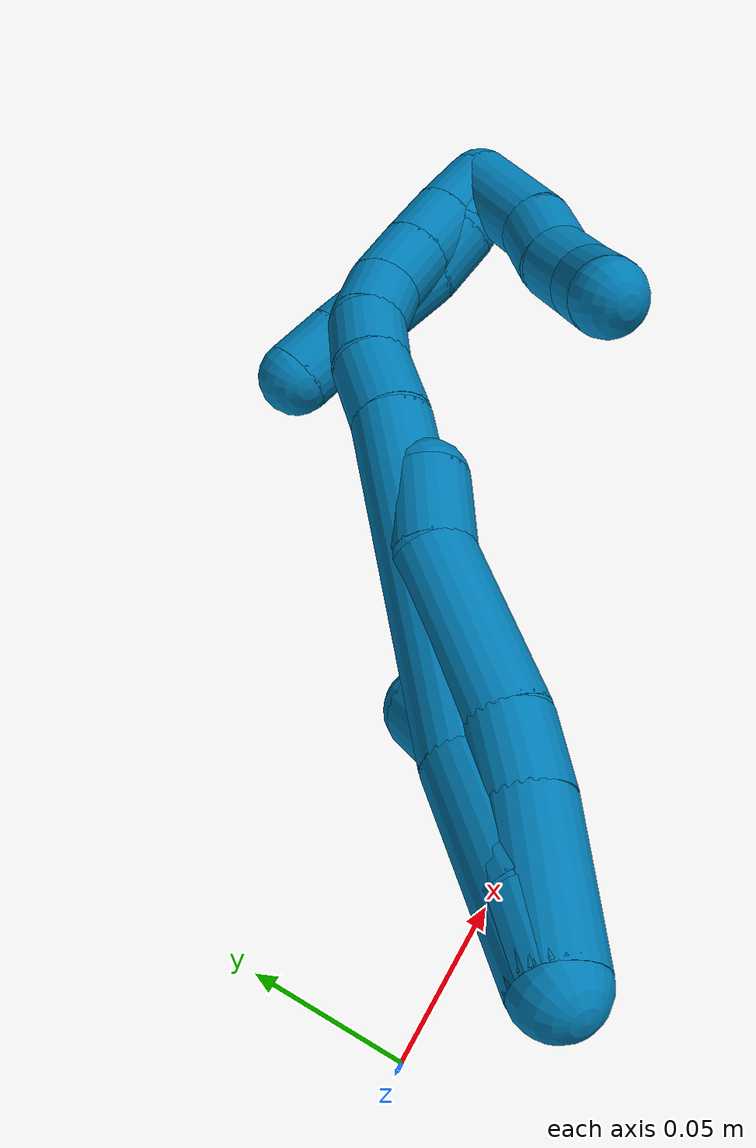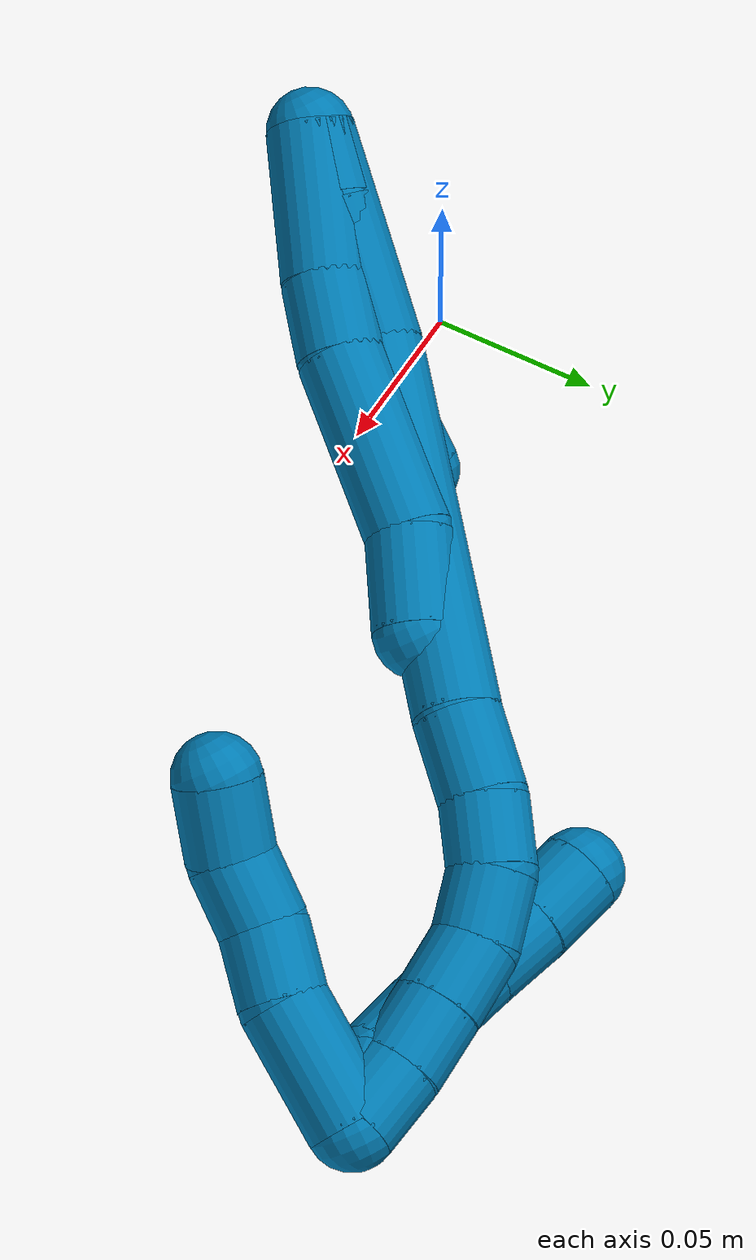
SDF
<sdf version="1.7">
 <world name="default">
  <model name="photoneo_s_sensor">
   <static>1</static>
   <pose>0 0 2 1.57079 1.57079 3.14159</pose>
   <link name="link">
    <inertial><mass>0.1</mass></inertial>
    <sensor name="sensor" type="depth">
     <update_rate>30</update_rate>
     <camera>
      <horizontal_fov>1.22</horizontal_fov>
      <image><width>1920</width><height>1200</height><format>B8G8R8</format></image>
      <clip><near>0.1</near><far>4</far></clip>
      <depth_camera><output>points</output></depth_camera>
     </camera>
     <plugin name="camera_plugin" filename="libgazebo_ros_depth_camera.so">
      <baseline>0.2</baseline>
      <alwaysOn>1</alwaysOn>
      <updateRate>0.0</updateRate>
      <cameraName>camera_ir</cameraName>
      <imageTopicName>/camera/color/image_raw</imageTopicName>
      <cameraInfoTopicName>/camera/color/camera_info</cameraInfoTopicName>
      <depthImageTopicName>/camera/depth/image_raw</depthImageTopicName>
      <depthImageCameraInfoTopicName>/camera/depth/camera_info</depthImageCameraInfoTopicName>
      <pointCloudTopicName>/camera/depth/points</pointCloudTopicName>
      <frameName>fr_optical</frameName>
      <pointCloudCutoff>0.1</pointCloudCutoff>
      <pointCloudCutoffMax>2.0</pointCloudCutoffMax>
      <distortionK1>0</distortionK1>
      <distortionK2>0</distortionK2>
      <distortionK3>0</distortionK3>
      <distortionT1>0</distortionT1>
      <distortionT2>0</distortionT2>
      <CxPrime>0</CxPrime>
      <Cx>0</Cx>
      <Cy>0</Cy>
      <focalLength>0</focalLength>
      <hackBaseline>0</hackBaseline>
     </plugin>
    </sensor>
   </link>
  </model>
  <model name="bin">
   <static>1</static>
   <link name="bottom">
    <collision name="collision-bottom">
     <pose>0 0 -0.01 0 -0 0</pose>
     <geometry><box><size>0.8 0.6 0.02</size></box></geometry>
     <surface>
      <friction><ode><mu>100</mu><mu2>100</mu2></ode></friction>
      <contact><collide_bitmask>65535</collide_bitmask></contact>
     </surface>
    </collision>
   </link>
   <link name="west_wall">
    <collision name="collision-west_wall">
     <pose>-0.41 0 0.1 0 -0 0</pose>
     <geometry><box><size>0.02 0.6 0.2</size></box></geometry>
     <surface>
      <friction><ode><mu>100</mu><mu2>100</mu2></ode></friction>
      <contact><collide_bitmask>65535</collide_bitmask></contact>
     </surface>
    </collision>
   </link>
   <link name="east_wall">
    <collision name="collision-east_wall">
     <pose>0.41 0 0.1 0 -0 0</pose>
     <geometry><box><size>0.02 0.6 0.2</size></box></geometry>
     <surface>
      <friction><ode><mu>100</mu><mu2>100</mu2></ode></friction>
      <contact><collide_bitmask>65535</collide_bitmask></contact>
     </surface>
    </collision>
   </link>
   <link name="south_wall">
    <collision name="collision-south_wall">
     <pose>0 -0.31 0.1 0 -0 0</pose>
     <geometry><box><size>0.8 0.02 0.2</size></box></geometry>
     <surface>
      <friction><ode><mu>100</mu><mu2>100</mu2></ode></friction>
      <contact><collide_bitmask>65535</collide_bitmask></contact>
     </surface>
    </collision>
   </link>
   <link name="north_wall">
    <collision name="collision-north_wall">
     <pose>0 0.31 0.1 0 -0 0</pose>
     <geometry><box><size>0.8 0.02 0.2</size></box></geometry>
     <surface>
      <friction><ode><mu>100</mu><mu2>100</mu2></ode></friction>
      <contact><collide_bitmask>65535</collide_bitmask></contact>
     </surface>
    </collision>
   </link>
  </model>
  <model name="9">
   <static>0</static>
   <link name="9">
    <collision name="collision-cylinder-e_1_2_8">
     <pose>0.010545 0.000449 -0.019405 -3.11845 0.497636 -3.05056</pose>
     <geometry><cylinder><radius>0.0125</radius><length>0.044179</length></cylinder></geometry>
     <surface>
      <friction><ode><mu>1.16</mu><mu2>1.16</mu2><slip1>0</slip1><slip2>0</slip2></ode></friction>
      <contact><ode><kp>1e+06</kp><kd>1</kd><max_vel>0</max_vel><min_depth>0.001</min_depth></ode></contact>
     </surface>
    </collision>
    <visual name="visual-cylinder-e_1_2_8">
     <pose>0.010545 0.000449 -0.019405 -3.11845 0.497636 -3.05056</pose>
     <geometry><cylinder><radius>0.0125</radius><length>0.044179</length></cylinder></geometry>
     <material><ambient>0 0.490196 0.709804 1</ambient></material>
    </visual>
    <collision name="collision-cylinder-e_2_8_9">
     <pose>0.026253 0.002348 -0.049084 -3.00141 0.461795 -2.56118</pose>
     <geometry><cylinder><radius>0.0125</radius><length>0.023178</length></cylinder></geometry>
     <surface>
      <friction><ode><mu>1.16</mu><mu2>1.16</mu2><slip1>0</slip1><slip2>0</slip2></ode></friction>
      <contact><ode><kp>1e+06</kp><kd>1</kd><max_vel>0</max_vel><min_depth>0.001</min_depth></ode></contact>
     </surface>
    </collision>
    <visual name="visual-cylinder-e_2_8_9">
     <pose>0.026253 0.002348 -0.049084 -3.00141 0.461795 -2.56118</pose>
     <geometry><cylinder><radius>0.0125</radius><length>0.023178</length></cylinder></geometry>
     <material><ambient>0 0.490196 0.709804 1</ambient></material>
    </visual>
    <collision name="collision-cylinder-e_3_9_10">
     <pose>0.040648 0.010292 -0.084214 -2.88603 0.344976 -1.87071</pose>
     <geometry><cylinder><radius>0.0125</radius><length>0.054599</length></cylinder></geometry>
     <surface>
      <friction><ode><mu>1.16</mu><mu2>1.16</mu2><slip1>0</slip1><slip2>0</slip2></ode></friction>
      <contact><ode><kp>1e+06</kp><kd>1</kd><max_vel>0</max_vel><min_depth>0.001</min_depth></ode></contact>
     </surface>
    </collision>
    <visual name="visual-cylinder-e_3_9_10">
     <pose>0.040648 0.010292 -0.084214 -2.88603 0.344976 -1.87071</pose>
     <geometry><cylinder><radius>0.0125</radius><length>0.054599</length></cylinder></geometry>
     <material><ambient>0 0.490196 0.709804 1</ambient></material>
    </visual>
    <collision name="collision-cylinder-e_4_10_6">
     <pose>0.057241 0.017318 -0.120993 -3.09706 0.552669 -2.98487</pose>
     <geometry><cylinder><radius>0.0125</radius><length>0.028043</length></cylinder></geometry>
     <surface>
      <friction><ode><mu>1.16</mu><mu2>1.16</mu2><slip1>0</slip1><slip2>0</slip2></ode></friction>
      <contact><ode><kp>1e+06</kp><kd>1</kd><max_vel>0</max_vel><min_depth>0.001</min_depth></ode></contact>
     </surface>
    </collision>
    <visual name="visual-cylinder-e_4_10_6">
     <pose>0.057241 0.017318 -0.120993 -3.09706 0.552669 -2.98487</pose>
     <geometry><cylinder><radius>0.0125</radius><length>0.028043</length></cylinder></geometry>
     <material><ambient>0 0.490196 0.709804 1</ambient></material>
    </visual>
    <collision name="collision-cylinder-e_1_2_11">
     <pose>0.003506 0.00088 -0.010088 -3.05459 0.333316 -2.63519</pose>
     <geometry><cylinder><radius>0.0125</radius><length>0.021433</length></cylinder></geometry>
     <surface>
      <friction><ode><mu>1.16</mu><mu2>1.16</mu2><slip1>0</slip1><slip2>0</slip2></ode></friction>
      <contact><ode><kp>1e+06</kp><kd>1</kd><max_vel>0</max_vel><min_depth>0.001</min_depth></ode></contact>
     </surface>
    </collision>
    <visual name="visual-cylinder-e_1_2_11">
     <pose>0.003506 0.00088 -0.010088 -3.05459 0.333316 -2.63519</pose>
     <geometry><cylinder><radius>0.0125</radius><length>0.021433</length></cylinder></geometry>
     <material><ambient>0 0.490196 0.709804 1</ambient></material>
    </visual>
    <collision name="collision-cylinder-e_2_11_12">
     <pose>0.010538 0.00177 -0.037085 -3.14097 0.205589 -3.13557</pose>
     <geometry><cylinder><radius>0.0125</radius><length>0.034544</length></cylinder></geometry>
     <surface>
      <friction><ode><mu>1.16</mu><mu2>1.16</mu2><slip1>0</slip1><slip2>0</slip2></ode></friction>
      <contact><ode><kp>1e+06</kp><kd>1</kd><max_vel>0</max_vel><min_depth>0.001</min_depth></ode></contact>
     </surface>
    </collision>
    <visual name="visual-cylinder-e_2_11_12">
     <pose>0.010538 0.00177 -0.037085 -3.14097 0.205589 -3.13557</pose>
     <geometry><cylinder><radius>0.0125</radius><length>0.034544</length></cylinder></geometry>
     <material><ambient>0 0.490196 0.709804 1</ambient></material>
    </visual>
    <collision name="collision-cylinder-e_3_12_13">
     <pose>0.015617 -0.000753 -0.065525 2.9253 0.130739 1.08519</pose>
     <geometry><cylinder><radius>0.0125</radius><length>0.023818</length></cylinder></geometry>
     <surface>
      <friction><ode><mu>1.16</mu><mu2>1.16</mu2><slip1>0</slip1><slip2>0</slip2></ode></friction>
      <contact><ode><kp>1e+06</kp><kd>1</kd><max_vel>0</max_vel><min_depth>0.001</min_depth></ode></contact>
     </surface>
    </collision>
    <visual name="visual-cylinder-e_3_12_13">
     <pose>0.015617 -0.000753 -0.065525 2.9253 0.130739 1.08519</pose>
     <geometry><cylinder><radius>0.0125</radius><length>0.023818</length></cylinder></geometry>
     <material><ambient>0 0.490196 0.709804 1</ambient></material>
    </visual>
    <collision name="collision-cylinder-e_4_13_5">
     <pose>0.015961 -0.004105 -0.087054 3.05991 -0.119829 -1.94556</pose>
     <geometry><cylinder><radius>0.0125</radius><length>0.020206</length></cylinder></geometry>
     <surface>
      <friction><ode><mu>1.16</mu><mu2>1.16</mu2><slip1>0</slip1><slip2>0</slip2></ode></friction>
      <contact><ode><kp>1e+06</kp><kd>1</kd><max_vel>0</max_vel><min_depth>0.001</min_depth></ode></contact>
     </surface>
    </collision>
    <visual name="visual-cylinder-e_4_13_5">
     <pose>0.015961 -0.004105 -0.087054 3.05991 -0.119829 -1.94556</pose>
     <geometry><cylinder><radius>0.0125</radius><length>0.020206</length></cylinder></geometry>
     <material><ambient>0 0.490196 0.709804 1</ambient></material>
    </visual>
    <collision name="collision-cylinder-e_1_2_14">
     <pose>0.00849 0.002249 -0.030797 -3.06869 0.268325 -2.61385</pose>
     <geometry><cylinder><radius>0.0125</radius><length>0.064049</length></cylinder></geometry>
     <surface>
      <friction><ode><mu>1.16</mu><mu2>1.16</mu2><slip1>0</slip1><slip2>0</slip2></ode></friction>
      <contact><ode><kp>1e+06</kp><kd>1</kd><max_vel>0</max_vel><min_depth>0.001</min_depth></ode></contact>
     </surface>
    </collision>
    <visual name="visual-cylinder-e_1_2_14">
     <pose>0.00849 0.002249 -0.030797 -3.06869 0.268325 -2.61385</pose>
     <geometry><cylinder><radius>0.0125</radius><length>0.064049</length></cylinder></geometry>
     <material><ambient>0 0.490196 0.709804 1</ambient></material>
    </visual>
    <collision name="collision-cylinder-e_2_14_15">
     <pose>0.044145 0.014717 -0.109121 -2.92981 0.509552 -2.36662</pose>
     <geometry><cylinder><radius>0.0125</radius><length>0.111377</length></cylinder></geometry>
     <surface>
      <friction><ode><mu>1.16</mu><mu2>1.16</mu2><slip1>0</slip1><slip2>0</slip2></ode></friction>
      <contact><ode><kp>1e+06</kp><kd>1</kd><max_vel>0</max_vel><min_depth>0.001</min_depth></ode></contact>
     </surface>
    </collision>
    <visual name="visual-cylinder-e_2_14_15">
     <pose>0.044145 0.014717 -0.109121 -2.92981 0.509552 -2.36662</pose>
     <geometry><cylinder><radius>0.0125</radius><length>0.111377</length></cylinder></geometry>
     <material><ambient>0 0.490196 0.709804 1</ambient></material>
    </visual>
    <collision name="collision-cylinder-e_3_15_16">
     <pose>0.075863 0.027193 -0.167771 -2.94132 0.38162 -2.18233</pose>
     <geometry><cylinder><radius>0.0125</radius><length>0.024456</length></cylinder></geometry>
     <surface>
      <friction><ode><mu>1.16</mu><mu2>1.16</mu2><slip1>0</slip1><slip2>0</slip2></ode></friction>
      <contact><ode><kp>1e+06</kp><kd>1</kd><max_vel>0</max_vel><min_depth>0.001</min_depth></ode></contact>
     </surface>
    </collision>
    <visual name="visual-cylinder-e_3_15_16">
     <pose>0.075863 0.027193 -0.167771 -2.94132 0.38162 -2.18233</pose>
     <geometry><cylinder><radius>0.0125</radius><length>0.024456</length></cylinder></geometry>
     <material><ambient>0 0.490196 0.709804 1</ambient></material>
    </visual>
    <collision name="collision-cylinder-e_4_16_17">
     <pose>0.085175 0.029789 -0.187687 -3.10313 0.495613 -2.98985</pose>
     <geometry><cylinder><radius>0.0125</radius><length>0.020008</length></cylinder></geometry>
     <surface>
      <friction><ode><mu>1.16</mu><mu2>1.16</mu2><slip1>0</slip1><slip2>0</slip2></ode></friction>
      <contact><ode><kp>1e+06</kp><kd>1</kd><max_vel>0</max_vel><min_depth>0.001</min_depth></ode></contact>
     </surface>
    </collision>
    <visual name="visual-cylinder-e_4_16_17">
     <pose>0.085175 0.029789 -0.187687 -3.10313 0.495613 -2.98985</pose>
     <geometry><cylinder><radius>0.0125</radius><length>0.020008</length></cylinder></geometry>
     <material><ambient>0 0.490196 0.709804 1</ambient></material>
    </visual>
    <collision name="collision-cylinder-e_5_17_18">
     <pose>0.096414 0.027869 -0.20376 2.84069 0.70475 2.35952</pose>
     <geometry><cylinder><radius>0.0125</radius><length>0.020011</length></cylinder></geometry>
     <surface>
      <friction><ode><mu>1.16</mu><mu2>1.16</mu2><slip1>0</slip1><slip2>0</slip2></ode></friction>
      <contact><ode><kp>1e+06</kp><kd>1</kd><max_vel>0</max_vel><min_depth>0.001</min_depth></ode></contact>
     </surface>
    </collision>
    <visual name="visual-cylinder-e_5_17_18">
     <pose>0.096414 0.027869 -0.20376 2.84069 0.70475 2.35952</pose>
     <geometry><cylinder><radius>0.0125</radius><length>0.020011</length></cylinder></geometry>
     <material><ambient>0 0.490196 0.709804 1</ambient></material>
    </visual>
    <collision name="collision-cylinder-e_6_18_19">
     <pose>0.111224 0.022638 -0.215764 2.5801 0.980298 2.15065</pose>
     <geometry><cylinder><radius>0.0125</radius><length>0.020051</length></cylinder></geometry>
     <surface>
      <friction><ode><mu>1.16</mu><mu2>1.16</mu2><slip1>0</slip1><slip2>0</slip2></ode></friction>
      <contact><ode><kp>1e+06</kp><kd>1</kd><max_vel>0</max_vel><min_depth>0.001</min_depth></ode></contact>
     </surface>
    </collision>
    <visual name="visual-cylinder-e_6_18_19">
     <pose>0.111224 0.022638 -0.215764 2.5801 0.980298 2.15065</pose>
     <geometry><cylinder><radius>0.0125</radius><length>0.020051</length></cylinder></geometry>
     <material><ambient>0 0.490196 0.709804 1</ambient></material>
    </visual>
    <collision name="collision-cylinder-e_7_19_20">
     <pose>0.127919 0.016545 -0.225017 2.53818 0.989397 2.09505</pose>
     <geometry><cylinder><radius>0.0125</radius><length>0.020025</length></cylinder></geometry>
     <surface>
      <friction><ode><mu>1.16</mu><mu2>1.16</mu2><slip1>0</slip1><slip2>0</slip2></ode></friction>
      <contact><ode><kp>1e+06</kp><kd>1</kd><max_vel>0</max_vel><min_depth>0.001</min_depth></ode></contact>
     </surface>
    </collision>
    <visual name="visual-cylinder-e_7_19_20">
     <pose>0.127919 0.016545 -0.225017 2.53818 0.989397 2.09505</pose>
     <geometry><cylinder><radius>0.0125</radius><length>0.020025</length></cylinder></geometry>
     <material><ambient>0 0.490196 0.709804 1</ambient></material>
    </visual>
    <collision name="collision-cylinder-e_8_20_1">
     <pose>0.14508 0.010159 -0.233042 2.39049 1.07248 1.97015</pose>
     <geometry><cylinder><radius>0.0125</radius><length>0.020022</length></cylinder></geometry>
     <surface>
      <friction><ode><mu>1.16</mu><mu2>1.16</mu2><slip1>0</slip1><slip2>0</slip2></ode></friction>
      <contact><ode><kp>1e+06</kp><kd>1</kd><max_vel>0</max_vel><min_depth>0.001</min_depth></ode></contact>
     </surface>
    </collision>
    <visual name="visual-cylinder-e_8_20_1">
     <pose>0.14508 0.010159 -0.233042 2.39049 1.07248 1.97015</pose>
     <geometry><cylinder><radius>0.0125</radius><length>0.020022</length></cylinder></geometry>
     <material><ambient>0 0.490196 0.709804 1</ambient></material>
    </visual>
    <collision name="collision-cylinder-e_1_1_21">
     <pose>0.152034 0.003155 -0.218593 0.205395 -0.100053 -0.01032</pose>
     <geometry><cylinder><radius>0.0125</radius><length>0.036847</length></cylinder></geometry>
     <surface>
      <friction><ode><mu>1.16</mu><mu2>1.16</mu2><slip1>0</slip1><slip2>0</slip2></ode></friction>
      <contact><ode><kp>1e+06</kp><kd>1</kd><max_vel>0</max_vel><min_depth>0.001</min_depth></ode></contact>
     </surface>
    </collision>
    <visual name="visual-cylinder-e_1_1_21">
     <pose>0.152034 0.003155 -0.218593 0.205395 -0.100053 -0.01032</pose>
     <geometry><cylinder><radius>0.0125</radius><length>0.036847</length></cylinder></geometry>
     <material><ambient>0 0.490196 0.709804 1</ambient></material>
    </visual>
    <collision name="collision-cylinder-e_2_21_22">
     <pose>0.146716 -0.001435 -0.190809 0.086383 -0.338558 -0.014773</pose>
     <geometry><cylinder><radius>0.0125</radius><length>0.020938</length></cylinder></geometry>
     <surface>
      <friction><ode><mu>1.16</mu><mu2>1.16</mu2><slip1>0</slip1><slip2>0</slip2></ode></friction>
      <contact><ode><kp>1e+06</kp><kd>1</kd><max_vel>0</max_vel><min_depth>0.001</min_depth></ode></contact>
     </surface>
    </collision>
    <visual name="visual-cylinder-e_2_21_22">
     <pose>0.146716 -0.001435 -0.190809 0.086383 -0.338558 -0.014773</pose>
     <geometry><cylinder><radius>0.0125</radius><length>0.020938</length></cylinder></geometry>
     <material><ambient>0 0.490196 0.709804 1</ambient></material>
    </visual>
    <collision name="collision-cylinder-e_3_22_23">
     <pose>0.142338 -0.003041 -0.170972 0.075237 -0.089598 -0.003374</pose>
     <geometry><cylinder><radius>0.0125</radius><length>0.020136</length></cylinder></geometry>
     <surface>
      <friction><ode><mu>1.16</mu><mu2>1.16</mu2><slip1>0</slip1><slip2>0</slip2></ode></friction>
      <contact><ode><kp>1e+06</kp><kd>1</kd><max_vel>0</max_vel><min_depth>0.001</min_depth></ode></contact>
     </surface>
    </collision>
    <visual name="visual-cylinder-e_3_22_23">
     <pose>0.142338 -0.003041 -0.170972 0.075237 -0.089598 -0.003374</pose>
     <geometry><cylinder><radius>0.0125</radius><length>0.020136</length></cylinder></geometry>
     <material><ambient>0 0.490196 0.709804 1</ambient></material>
    </visual>
    <collision name="collision-cylinder-e_4_23_4">
     <pose>0.140219 -0.000877 -0.150395 -0.269154 -0.110551 0.014983</pose>
     <geometry><cylinder><radius>0.0125</radius><length>0.022079</length></cylinder></geometry>
     <surface>
      <friction><ode><mu>1.16</mu><mu2>1.16</mu2><slip1>0</slip1><slip2>0</slip2></ode></friction>
      <contact><ode><kp>1e+06</kp><kd>1</kd><max_vel>0</max_vel><min_depth>0.001</min_depth></ode></contact>
     </surface>
    </collision>
    <visual name="visual-cylinder-e_4_23_4">
     <pose>0.140219 -0.000877 -0.150395 -0.269154 -0.110551 0.014983</pose>
     <geometry><cylinder><radius>0.0125</radius><length>0.022079</length></cylinder></geometry>
     <material><ambient>0 0.490196 0.709804 1</ambient></material>
    </visual>
    <collision name="collision-cylinder-e_1_1_24">
     <pose>0.145173 0.007388 -0.231634 -0.100326 -1.05533 0.058501</pose>
     <geometry><cylinder><radius>0.0125</radius><length>0.02</length></cylinder></geometry>
     <surface>
      <friction><ode><mu>1.16</mu><mu2>1.16</mu2><slip1>0</slip1><slip2>0</slip2></ode></friction>
      <contact><ode><kp>1e+06</kp><kd>1</kd><max_vel>0</max_vel><min_depth>0.001</min_depth></ode></contact>
     </surface>
    </collision>
    <visual name="visual-cylinder-e_1_1_24">
     <pose>0.145173 0.007388 -0.231634 -0.100326 -1.05533 0.058501</pose>
     <geometry><cylinder><radius>0.0125</radius><length>0.02</length></cylinder></geometry>
     <material><ambient>0 0.490196 0.709804 1</ambient></material>
    </visual>
    <collision name="collision-cylinder-e_2_24_25">
     <pose>0.12683 0.009622 -0.224732 -0.716634 -1.30258 0.556103</pose>
     <geometry><cylinder><radius>0.0125</radius><length>0.02</length></cylinder></geometry>
     <surface>
      <friction><ode><mu>1.16</mu><mu2>1.16</mu2><slip1>0</slip1><slip2>0</slip2></ode></friction>
      <contact><ode><kp>1e+06</kp><kd>1</kd><max_vel>0</max_vel><min_depth>0.001</min_depth></ode></contact>
     </surface>
    </collision>
    <visual name="visual-cylinder-e_2_24_25">
     <pose>0.12683 0.009622 -0.224732 -0.716634 -1.30258 0.556103</pose>
     <geometry><cylinder><radius>0.0125</radius><length>0.02</length></cylinder></geometry>
     <material><ambient>0 0.490196 0.709804 1</ambient></material>
    </visual>
    <collision name="collision-cylinder-e_3_25_26">
     <pose>0.108177 0.015065 -0.220474 -1.02278 -1.12222 0.678159</pose>
     <geometry><cylinder><radius>0.0125</radius><length>0.02</length></cylinder></geometry>
     <surface>
      <friction><ode><mu>1.16</mu><mu2>1.16</mu2><slip1>0</slip1><slip2>0</slip2></ode></friction>
      <contact><ode><kp>1e+06</kp><kd>1</kd><max_vel>0</max_vel><min_depth>0.001</min_depth></ode></contact>
     </surface>
    </collision>
    <visual name="visual-cylinder-e_3_25_26">
     <pose>0.108177 0.015065 -0.220474 -1.02278 -1.12222 0.678159</pose>
     <geometry><cylinder><radius>0.0125</radius><length>0.02</length></cylinder></geometry>
     <material><ambient>0 0.490196 0.709804 1</ambient></material>
    </visual>
    <collision name="collision-cylinder-e_4_26_27">
     <pose>0.089968 0.022246 -0.216399 -1.08999 -1.16754 0.761808</pose>
     <geometry><cylinder><radius>0.0125</radius><length>0.02</length></cylinder></geometry>
     <surface>
      <friction><ode><mu>1.16</mu><mu2>1.16</mu2><slip1>0</slip1><slip2>0</slip2></ode></friction>
      <contact><ode><kp>1e+06</kp><kd>1</kd><max_vel>0</max_vel><min_depth>0.001</min_depth></ode></contact>
     </surface>
    </collision>
    <visual name="visual-cylinder-e_4_26_27">
     <pose>0.089968 0.022246 -0.216399 -1.08999 -1.16754 0.761808</pose>
     <geometry><cylinder><radius>0.0125</radius><length>0.02</length></cylinder></geometry>
     <material><ambient>0 0.490196 0.709804 1</ambient></material>
    </visual>
    <collision name="collision-cylinder-e_5_27_3">
     <pose>0.07167 0.029103 -0.212181 -0.95227 -1.14333 0.640676</pose>
     <geometry><cylinder><radius>0.0125</radius><length>0.02</length></cylinder></geometry>
     <surface>
      <friction><ode><mu>1.16</mu><mu2>1.16</mu2><slip1>0</slip1><slip2>0</slip2></ode></friction>
      <contact><ode><kp>1e+06</kp><kd>1</kd><max_vel>0</max_vel><min_depth>0.001</min_depth></ode></contact>
     </surface>
    </collision>
    <visual name="visual-cylinder-e_5_27_3">
     <pose>0.07167 0.029103 -0.212181 -0.95227 -1.14333 0.640676</pose>
     <geometry><cylinder><radius>0.0125</radius><length>0.02</length></cylinder></geometry>
     <material><ambient>0 0.490196 0.709804 1</ambient></material>
    </visual>
    <collision name="collision-sphere-3">
     <pose>0.06257 0.03248 -0.209777 0 -0 0</pose>
     <geometry><sphere><radius>0.0125</radius></sphere></geometry>
     <surface>
      <friction><ode><mu>1.16</mu><mu2>1.16</mu2><slip1>0</slip1><slip2>0</slip2></ode></friction>
      <contact><ode><kp>1e+06</kp><kd>1</kd><max_vel>0</max_vel><min_depth>0.001</min_depth></ode></contact>
     </surface>
    </collision>
    <visual name="visual-sphere-3">
     <pose>0.06257 0.03248 -0.209777 0 -0 0</pose>
     <geometry><sphere><radius>0.0125</radius></sphere></geometry>
     <material><ambient>0 0.490196 0.709804 1</ambient></material>
    </visual>
    <collision name="collision-sphere-27">
     <pose>0.080771 0.025725 -0.214585 0 -0 0</pose>
     <geometry><sphere><radius>0.0125</radius></sphere></geometry>
     <surface>
      <friction><ode><mu>1.16</mu><mu2>1.16</mu2><slip1>0</slip1><slip2>0</slip2></ode></friction>
      <contact><ode><kp>1e+06</kp><kd>1</kd><max_vel>0</max_vel><min_depth>0.001</min_depth></ode></contact>
     </surface>
    </collision>
    <visual name="visual-sphere-27">
     <pose>0.080771 0.025725 -0.214585 0 -0 0</pose>
     <geometry><sphere><radius>0.0125</radius></sphere></geometry>
     <material><ambient>0 0.490196 0.709804 1</ambient></material>
    </visual>
    <collision name="collision-sphere-26">
     <pose>0.099166 0.018766 -0.218214 0 -0 0</pose>
     <geometry><sphere><radius>0.0125</radius></sphere></geometry>
     <surface>
      <friction><ode><mu>1.16</mu><mu2>1.16</mu2><slip1>0</slip1><slip2>0</slip2></ode></friction>
      <contact><ode><kp>1e+06</kp><kd>1</kd><max_vel>0</max_vel><min_depth>0.001</min_depth></ode></contact>
     </surface>
    </collision>
    <visual name="visual-sphere-26">
     <pose>0.099166 0.018766 -0.218214 0 -0 0</pose>
     <geometry><sphere><radius>0.0125</radius></sphere></geometry>
     <material><ambient>0 0.490196 0.709804 1</ambient></material>
    </visual>
    <collision name="collision-sphere-25">
     <pose>0.117188 0.011363 -0.222733 0 -0 0</pose>
     <geometry><sphere><radius>0.0125</radius></sphere></geometry>
     <surface>
      <friction><ode><mu>1.16</mu><mu2>1.16</mu2><slip1>0</slip1><slip2>0</slip2></ode></friction>
      <contact><ode><kp>1e+06</kp><kd>1</kd><max_vel>0</max_vel><min_depth>0.001</min_depth></ode></contact>
     </surface>
    </collision>
    <visual name="visual-sphere-25">
     <pose>0.117188 0.011363 -0.222733 0 -0 0</pose>
     <geometry><sphere><radius>0.0125</radius></sphere></geometry>
     <material><ambient>0 0.490196 0.709804 1</ambient></material>
    </visual>
    <collision name="collision-sphere-24">
     <pose>0.136473 0.007881 -0.22673 0 -0 0</pose>
     <geometry><sphere><radius>0.0125</radius></sphere></geometry>
     <surface>
      <friction><ode><mu>1.16</mu><mu2>1.16</mu2><slip1>0</slip1><slip2>0</slip2></ode></friction>
      <contact><ode><kp>1e+06</kp><kd>1</kd><max_vel>0</max_vel><min_depth>0.001</min_depth></ode></contact>
     </surface>
    </collision>
    <visual name="visual-sphere-24">
     <pose>0.136473 0.007881 -0.22673 0 -0 0</pose>
     <geometry><sphere><radius>0.0125</radius></sphere></geometry>
     <material><ambient>0 0.490196 0.709804 1</ambient></material>
    </visual>
    <collision name="collision-sphere-4">
     <pose>0.139002 0.00204 -0.139819 0 -0 0</pose>
     <geometry><sphere><radius>0.0125</radius></sphere></geometry>
     <surface>
      <friction><ode><mu>1.16</mu><mu2>1.16</mu2><slip1>0</slip1><slip2>0</slip2></ode></friction>
      <contact><ode><kp>1e+06</kp><kd>1</kd><max_vel>0</max_vel><min_depth>0.001</min_depth></ode></contact>
     </surface>
    </collision>
    <visual name="visual-sphere-4">
     <pose>0.139002 0.00204 -0.139819 0 -0 0</pose>
     <geometry><sphere><radius>0.0125</radius></sphere></geometry>
     <material><ambient>0 0.490196 0.709804 1</ambient></material>
    </visual>
    <collision name="collision-sphere-23">
     <pose>0.141437 -0.003795 -0.160972 0 -0 0</pose>
     <geometry><sphere><radius>0.0125</radius></sphere></geometry>
     <surface>
      <friction><ode><mu>1.16</mu><mu2>1.16</mu2><slip1>0</slip1><slip2>0</slip2></ode></friction>
      <contact><ode><kp>1e+06</kp><kd>1</kd><max_vel>0</max_vel><min_depth>0.001</min_depth></ode></contact>
     </surface>
    </collision>
    <visual name="visual-sphere-23">
     <pose>0.141437 -0.003795 -0.160972 0 -0 0</pose>
     <geometry><sphere><radius>0.0125</radius></sphere></geometry>
     <material><ambient>0 0.490196 0.709804 1</ambient></material>
    </visual>
    <collision name="collision-sphere-22">
     <pose>0.143239 -0.002287 -0.180971 0 -0 0</pose>
     <geometry><sphere><radius>0.0125</radius></sphere></geometry>
     <surface>
      <friction><ode><mu>1.16</mu><mu2>1.16</mu2><slip1>0</slip1><slip2>0</slip2></ode></friction>
      <contact><ode><kp>1e+06</kp><kd>1</kd><max_vel>0</max_vel><min_depth>0.001</min_depth></ode></contact>
     </surface>
    </collision>
    <visual name="visual-sphere-22">
     <pose>0.143239 -0.002287 -0.180971 0 -0 0</pose>
     <geometry><sphere><radius>0.0125</radius></sphere></geometry>
     <material><ambient>0 0.490196 0.709804 1</ambient></material>
    </visual>
    <collision name="collision-sphere-21">
     <pose>0.150193 -0.000583 -0.200647 0 -0 0</pose>
     <geometry><sphere><radius>0.0125</radius></sphere></geometry>
     <surface>
      <friction><ode><mu>1.16</mu><mu2>1.16</mu2><slip1>0</slip1><slip2>0</slip2></ode></friction>
      <contact><ode><kp>1e+06</kp><kd>1</kd><max_vel>0</max_vel><min_depth>0.001</min_depth></ode></contact>
     </surface>
    </collision>
    <visual name="visual-sphere-21">
     <pose>0.150193 -0.000583 -0.200647 0 -0 0</pose>
     <geometry><sphere><radius>0.0125</radius></sphere></geometry>
     <material><ambient>0 0.490196 0.709804 1</ambient></material>
    </visual>
    <collision name="collision-sphere-1">
     <pose>0.153874 0.006894 -0.236539 0 -0 0</pose>
     <geometry><sphere><radius>0.0125</radius></sphere></geometry>
     <surface>
      <friction><ode><mu>1.16</mu><mu2>1.16</mu2><slip1>0</slip1><slip2>0</slip2></ode></friction>
      <contact><ode><kp>1e+06</kp><kd>1</kd><max_vel>0</max_vel><min_depth>0.001</min_depth></ode></contact>
     </surface>
    </collision>
    <visual name="visual-sphere-1">
     <pose>0.153874 0.006894 -0.236539 0 -0 0</pose>
     <geometry><sphere><radius>0.0125</radius></sphere></geometry>
     <material><ambient>0 0.490196 0.709804 1</ambient></material>
    </visual>
    <collision name="collision-sphere-11">
     <pose>0.007012 0.00176 -0.020176 0 -0 0</pose>
     <geometry><sphere><radius>0.0125</radius></sphere></geometry>
     <surface>
      <friction><ode><mu>1.16</mu><mu2>1.16</mu2><slip1>0</slip1><slip2>0</slip2></ode></friction>
      <contact><ode><kp>1e+06</kp><kd>1</kd><max_vel>0</max_vel><min_depth>0.001</min_depth></ode></contact>
     </surface>
    </collision>
    <visual name="visual-sphere-11">
     <pose>0.007012 0.00176 -0.020176 0 -0 0</pose>
     <geometry><sphere><radius>0.0125</radius></sphere></geometry>
     <material><ambient>0 0.490196 0.709804 1</ambient></material>
    </visual>
    <collision name="collision-sphere-6">
     <pose>0.064602 0.017849 -0.132916 0 -0 0</pose>
     <geometry><sphere><radius>0.0125</radius></sphere></geometry>
     <surface>
      <friction><ode><mu>1.16</mu><mu2>1.16</mu2><slip1>0</slip1><slip2>0</slip2></ode></friction>
      <contact><ode><kp>1e+06</kp><kd>1</kd><max_vel>0</max_vel><min_depth>0.001</min_depth></ode></contact>
     </surface>
    </collision>
    <visual name="visual-sphere-6">
     <pose>0.064602 0.017849 -0.132916 0 -0 0</pose>
     <geometry><sphere><radius>0.0125</radius></sphere></geometry>
     <material><ambient>0 0.490196 0.709804 1</ambient></material>
    </visual>
    <collision name="collision-sphere-10">
     <pose>0.04988 0.016787 -0.109071 0 -0 0</pose>
     <geometry><sphere><radius>0.0125</radius></sphere></geometry>
     <surface>
      <friction><ode><mu>1.16</mu><mu2>1.16</mu2><slip1>0</slip1><slip2>0</slip2></ode></friction>
      <contact><ode><kp>1e+06</kp><kd>1</kd><max_vel>0</max_vel><min_depth>0.001</min_depth></ode></contact>
     </surface>
    </collision>
    <visual name="visual-sphere-10">
     <pose>0.04988 0.016787 -0.109071 0 -0 0</pose>
     <geometry><sphere><radius>0.0125</radius></sphere></geometry>
     <material><ambient>0 0.490196 0.709804 1</ambient></material>
    </visual>
    <collision name="collision-sphere-9">
     <pose>0.031416 0.003798 -0.059357 0 -0 0</pose>
     <geometry><sphere><radius>0.0125</radius></sphere></geometry>
     <surface>
      <friction><ode><mu>1.16</mu><mu2>1.16</mu2><slip1>0</slip1><slip2>0</slip2></ode></friction>
      <contact><ode><kp>1e+06</kp><kd>1</kd><max_vel>0</max_vel><min_depth>0.001</min_depth></ode></contact>
     </surface>
    </collision>
    <visual name="visual-sphere-9">
     <pose>0.031416 0.003798 -0.059357 0 -0 0</pose>
     <geometry><sphere><radius>0.0125</radius></sphere></geometry>
     <material><ambient>0 0.490196 0.709804 1</ambient></material>
    </visual>
    <collision name="collision-sphere-2">
     <geometry><sphere><radius>0.0125</radius></sphere></geometry>
     <surface>
      <friction><ode><mu>1.16</mu><mu2>1.16</mu2><slip1>0</slip1><slip2>0</slip2></ode></friction>
      <contact><ode><kp>1e+06</kp><kd>1</kd><max_vel>0</max_vel><min_depth>0.001</min_depth></ode></contact>
     </surface>
    </collision>
    <visual name="visual-sphere-2">
     <geometry><sphere><radius>0.0125</radius></sphere></geometry>
     <material><ambient>0 0.490196 0.709804 1</ambient></material>
    </visual>
    <collision name="collision-sphere-19">
     <pose>0.119552 0.019665 -0.220489 0 -0 0</pose>
     <geometry><sphere><radius>0.0125</radius></sphere></geometry>
     <surface>
      <friction><ode><mu>1.16</mu><mu2>1.16</mu2><slip1>0</slip1><slip2>0</slip2></ode></friction>
      <contact><ode><kp>1e+06</kp><kd>1</kd><max_vel>0</max_vel><min_depth>0.001</min_depth></ode></contact>
     </surface>
    </collision>
    <visual name="visual-sphere-19">
     <pose>0.119552 0.019665 -0.220489 0 -0 0</pose>
     <geometry><sphere><radius>0.0125</radius></sphere></geometry>
     <material><ambient>0 0.490196 0.709804 1</ambient></material>
    </visual>
    <collision name="collision-sphere-8">
     <pose>0.021089 0.000898 -0.038811 0 -0 0</pose>
     <geometry><sphere><radius>0.0125</radius></sphere></geometry>
     <surface>
      <friction><ode><mu>1.16</mu><mu2>1.16</mu2><slip1>0</slip1><slip2>0</slip2></ode></friction>
      <contact><ode><kp>1e+06</kp><kd>1</kd><max_vel>0</max_vel><min_depth>0.001</min_depth></ode></contact>
     </surface>
    </collision>
    <visual name="visual-sphere-8">
     <pose>0.021089 0.000898 -0.038811 0 -0 0</pose>
     <geometry><sphere><radius>0.0125</radius></sphere></geometry>
     <material><ambient>0 0.490196 0.709804 1</ambient></material>
    </visual>
    <collision name="collision-sphere-12">
     <pose>0.014064 0.001781 -0.053993 0 -0 0</pose>
     <geometry><sphere><radius>0.0125</radius></sphere></geometry>
     <surface>
      <friction><ode><mu>1.16</mu><mu2>1.16</mu2><slip1>0</slip1><slip2>0</slip2></ode></friction>
      <contact><ode><kp>1e+06</kp><kd>1</kd><max_vel>0</max_vel><min_depth>0.001</min_depth></ode></contact>
     </surface>
    </collision>
    <visual name="visual-sphere-12">
     <pose>0.014064 0.001781 -0.053993 0 -0 0</pose>
     <geometry><sphere><radius>0.0125</radius></sphere></geometry>
     <material><ambient>0 0.490196 0.709804 1</ambient></material>
    </visual>
    <collision name="collision-sphere-13">
     <pose>0.017169 -0.003287 -0.077057 0 -0 0</pose>
     <geometry><sphere><radius>0.0125</radius></sphere></geometry>
     <surface>
      <friction><ode><mu>1.16</mu><mu2>1.16</mu2><slip1>0</slip1><slip2>0</slip2></ode></friction>
      <contact><ode><kp>1e+06</kp><kd>1</kd><max_vel>0</max_vel><min_depth>0.001</min_depth></ode></contact>
     </surface>
    </collision>
    <visual name="visual-sphere-13">
     <pose>0.017169 -0.003287 -0.077057 0 -0 0</pose>
     <geometry><sphere><radius>0.0125</radius></sphere></geometry>
     <material><ambient>0 0.490196 0.709804 1</ambient></material>
    </visual>
    <collision name="collision-sphere-5">
     <pose>0.014754 -0.004924 -0.097051 0 -0 0</pose>
     <geometry><sphere><radius>0.0125</radius></sphere></geometry>
     <surface>
      <friction><ode><mu>1.16</mu><mu2>1.16</mu2><slip1>0</slip1><slip2>0</slip2></ode></friction>
      <contact><ode><kp>1e+06</kp><kd>1</kd><max_vel>0</max_vel><min_depth>0.001</min_depth></ode></contact>
     </surface>
    </collision>
    <visual name="visual-sphere-5">
     <pose>0.014754 -0.004924 -0.097051 0 -0 0</pose>
     <geometry><sphere><radius>0.0125</radius></sphere></geometry>
     <material><ambient>0 0.490196 0.709804 1</ambient></material>
    </visual>
    <collision name="collision-sphere-14">
     <pose>0.016981 0.004498 -0.061594 0 -0 0</pose>
     <geometry><sphere><radius>0.0125</radius></sphere></geometry>
     <surface>
      <friction><ode><mu>1.16</mu><mu2>1.16</mu2><slip1>0</slip1><slip2>0</slip2></ode></friction>
      <contact><ode><kp>1e+06</kp><kd>1</kd><max_vel>0</max_vel><min_depth>0.001</min_depth></ode></contact>
     </surface>
    </collision>
    <visual name="visual-sphere-14">
     <pose>0.016981 0.004498 -0.061594 0 -0 0</pose>
     <geometry><sphere><radius>0.0125</radius></sphere></geometry>
     <material><ambient>0 0.490196 0.709804 1</ambient></material>
    </visual>
    <collision name="collision-sphere-15">
     <pose>0.071309 0.024936 -0.156649 0 -0 0</pose>
     <geometry><sphere><radius>0.0125</radius></sphere></geometry>
     <surface>
      <friction><ode><mu>1.16</mu><mu2>1.16</mu2><slip1>0</slip1><slip2>0</slip2></ode></friction>
      <contact><ode><kp>1e+06</kp><kd>1</kd><max_vel>0</max_vel><min_depth>0.001</min_depth></ode></contact>
     </surface>
    </collision>
    <visual name="visual-sphere-15">
     <pose>0.071309 0.024936 -0.156649 0 -0 0</pose>
     <geometry><sphere><radius>0.0125</radius></sphere></geometry>
     <material><ambient>0 0.490196 0.709804 1</ambient></material>
    </visual>
    <collision name="collision-sphere-16">
     <pose>0.080417 0.029451 -0.178893 0 -0 0</pose>
     <geometry><sphere><radius>0.0125</radius></sphere></geometry>
     <surface>
      <friction><ode><mu>1.16</mu><mu2>1.16</mu2><slip1>0</slip1><slip2>0</slip2></ode></friction>
      <contact><ode><kp>1e+06</kp><kd>1</kd><max_vel>0</max_vel><min_depth>0.001</min_depth></ode></contact>
     </surface>
    </collision>
    <visual name="visual-sphere-16">
     <pose>0.080417 0.029451 -0.178893 0 -0 0</pose>
     <geometry><sphere><radius>0.0125</radius></sphere></geometry>
     <material><ambient>0 0.490196 0.709804 1</ambient></material>
    </visual>
    <collision name="collision-sphere-17">
     <pose>0.089932 0.030128 -0.19648 0 -0 0</pose>
     <geometry><sphere><radius>0.0125</radius></sphere></geometry>
     <surface>
      <friction><ode><mu>1.16</mu><mu2>1.16</mu2><slip1>0</slip1><slip2>0</slip2></ode></friction>
      <contact><ode><kp>1e+06</kp><kd>1</kd><max_vel>0</max_vel><min_depth>0.001</min_depth></ode></contact>
     </surface>
    </collision>
    <visual name="visual-sphere-17">
     <pose>0.089932 0.030128 -0.19648 0 -0 0</pose>
     <geometry><sphere><radius>0.0125</radius></sphere></geometry>
     <material><ambient>0 0.490196 0.709804 1</ambient></material>
    </visual>
    <collision name="collision-sphere-18">
     <pose>0.102896 0.02561 -0.211039 0 -0 0</pose>
     <geometry><sphere><radius>0.0125</radius></sphere></geometry>
     <surface>
      <friction><ode><mu>1.16</mu><mu2>1.16</mu2><slip1>0</slip1><slip2>0</slip2></ode></friction>
      <contact><ode><kp>1e+06</kp><kd>1</kd><max_vel>0</max_vel><min_depth>0.001</min_depth></ode></contact>
     </surface>
    </collision>
    <visual name="visual-sphere-18">
     <pose>0.102896 0.02561 -0.211039 0 -0 0</pose>
     <geometry><sphere><radius>0.0125</radius></sphere></geometry>
     <material><ambient>0 0.490196 0.709804 1</ambient></material>
    </visual>
    <collision name="collision-sphere-20">
     <pose>0.136287 0.013425 -0.229544 0 -0 0</pose>
     <geometry><sphere><radius>0.0125</radius></sphere></geometry>
     <surface>
      <friction><ode><mu>1.16</mu><mu2>1.16</mu2><slip1>0</slip1><slip2>0</slip2></ode></friction>
      <contact><ode><kp>1e+06</kp><kd>1</kd><max_vel>0</max_vel><min_depth>0.001</min_depth></ode></contact>
     </surface>
    </collision>
    <visual name="visual-sphere-20">
     <pose>0.136287 0.013425 -0.229544 0 -0 0</pose>
     <geometry><sphere><radius>0.0125</radius></sphere></geometry>
     <material><ambient>0 0.490196 0.709804 1</ambient></material>
    </visual>
    <inertial>
     <pose>0.066868 0.009821 -0.127046 0 -0 0</pose>
     <mass>0.75</mass>
     <inertia>
      <ixx>-0.000197</ixx>
      <ixy>0</ixy>
      <ixz>0</ixz>
      <iyy>6.7e-05</iyy>
      <iyz>0</iyz>
      <izz>-0.00013</izz>
     </inertia>
    </inertial>
   </link>
   <pose>0.037471 -0.021335 0.107908 0.837005 -0.333523 -0.182694</pose>
  </model>
 </world>
</sdf>
